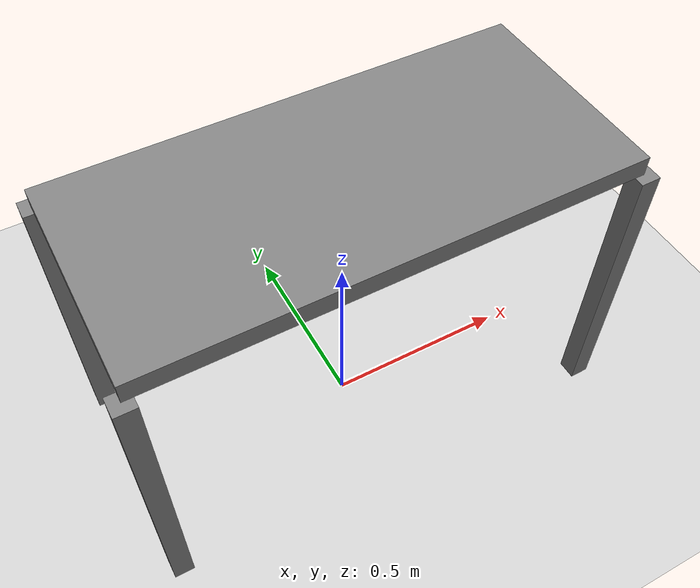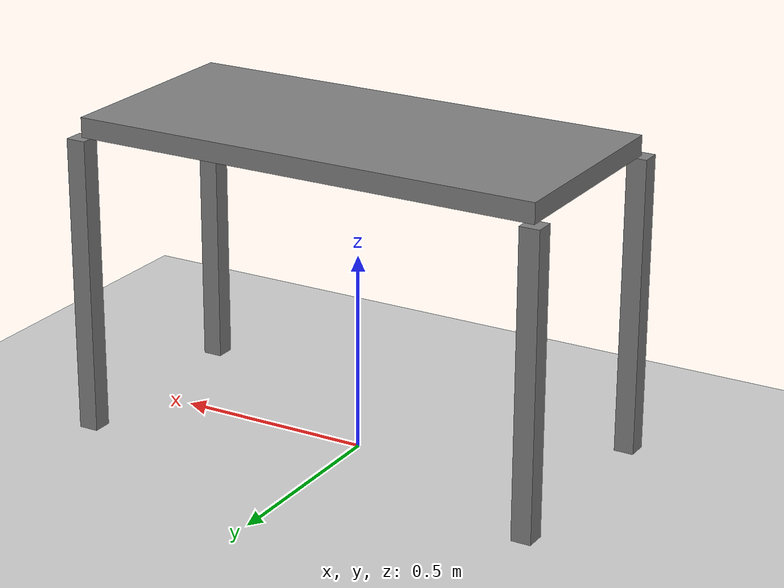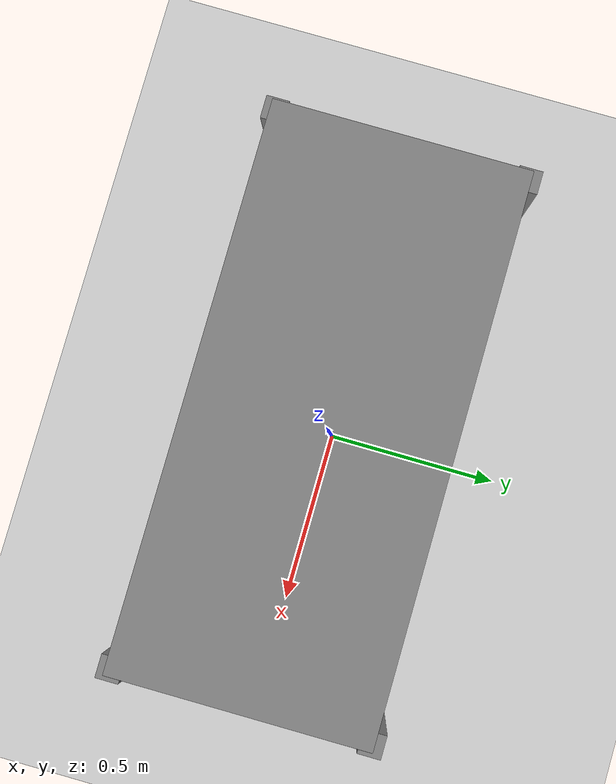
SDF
<?xml version="1.0" ?>
<sdf version="1.8">
  <world name="lerobot_world">
    <physics name="1ms" type="ignored">
      <max_step_size>0.001</max_step_size>
      <real_time_factor>1.0</real_time_factor>
    </physics>
    <plugin
      filename="gz-sim-physics-system"
      name="gz::sim::systems::Physics">
    </plugin>
    <plugin
      filename="gz-sim-user-commands-system"
      name="gz::sim::systems::UserCommands">
    </plugin>
    <plugin
      filename="gz-sim-scene-broadcaster-system"
      name="gz::sim::systems::SceneBroadcaster">
    </plugin>
    <plugin filename="gz-sim-sensors-system" name="gz::sim::systems::Sensors">
      <render_engine>ogre2</render_engine>
    </plugin>

    <light type="directional" name="sun">
      <cast_shadows>true</cast_shadows>
      <pose>0 0 10 0 0 0</pose>
      <diffuse>0.8 0.8 0.8 1</diffuse>
      <specular>0.2 0.2 0.2 1</specular>
      <attenuation>
        <range>1000</range>
        <constant>0.9</constant>
        <linear>0.01</linear>
        <quadratic>0.001</quadratic>
      </attenuation>
      <direction>-0.5 0.1 -0.9</direction>
    </light>

    <model name="ground_plane">
      <static>true</static>
      <link name="link">
        <collision name="collision">
          <geometry>
            <plane>
              <normal>0 0 1</normal>
              <size>100 100</size>
            </plane>
          </geometry>
        </collision>
        <visual name="visual">
          <geometry>
            <plane>
              <normal>0 0 1</normal>
              <size>100 100</size>
            </plane>
          </geometry>
          <material>
            <ambient>0.8 0.8 0.8 1</ambient>
            <diffuse>0.8 0.8 0.8 1</diffuse>
            <specular>0.8 0.8 0.8 1</specular>
          </material>
        </visual>
      </link>
    </model>

    <model name="table">
      <static>true</static>
      <pose>0 0 0.8 0 0 0</pose>
      <link name="link">
        <collision name="collision">
          <geometry>
            <box>
              <size>1.2 0.55 0.05</size>
            </box>
          </geometry>
        </collision>
        <visual name="visual">
          <geometry>
            <box>
              <size>1.2 0.55 0.05</size>
            </box>
          </geometry>
          <material>
            <ambient>0.5 0.5 0.5 1</ambient>
            <diffuse>0.5 0.5 0.5 1</diffuse>
          </material>
        </visual>
      </link>
      <link name="leg1">
        <pose>-0.6 -0.275 -0.4 0 0 0</pose>
        <collision name="collision">
          <geometry>
            <box>
              <size>0.05 0.05 0.75</size>
            </box>
          </geometry>
        </collision>
        <visual name="visual">
          <geometry>
            <box>
              <size>0.05 0.05 0.75</size>
            </box>
          </geometry>
          <material>
            <ambient>0.5 0.5 0.5 1</ambient>
            <diffuse>0.5 0.5 0.5 1</diffuse>
          </material>
        </visual>
      </link>
      <link name="leg2">
        <pose>0.6 -0.275 -0.4 0 0 0</pose>
        <collision name="collision">
          <geometry>
            <box>
              <size>0.05 0.05 0.75</size>
            </box>
          </geometry>
        </collision>
        <visual name="visual">
          <geometry>
            <box>
              <size>0.05 0.05 0.75</size>
            </box>
          </geometry>
          <material>
            <ambient>0.5 0.5 0.5 1</ambient>
            <diffuse>0.5 0.5 0.5 1</diffuse>
          </material>
        </visual>
      </link>
      <link name="leg3">
        <pose>-0.6 0.275 -0.4 0 0 0</pose>
        <collision name="collision">
          <geometry>
            <box>
              <size>0.05 0.05 0.75</size>
            </box>
          </geometry>
        </collision>
        <visual name="visual">
          <geometry>
            <box>
              <size>0.05 0.05 0.75</size>
            </box>
          </geometry>
          <material>
            <ambient>0.5 0.5 0.5 1</ambient>
            <diffuse>0.5 0.5 0.5 1</diffuse>
          </material>
        </visual>
      </link>
      <link name="leg4">
        <pose>0.6 0.275 -0.4 0 0 0</pose>
        <collision name="collision">
          <geometry>
            <box>
              <size>0.05 0.05 0.75</size>
            </box>
          </geometry>
        </collision>
        <visual name="visual">
          <geometry>
            <box>
              <size>0.05 0.05 0.75</size>
            </box>
          </geometry>
          <material>
            <ambient>0.5 0.5 0.5 1</ambient>
            <diffuse>0.5 0.5 0.5 1</diffuse>
          </material>
        </visual>
      </link>
    </model>
  </world>
</sdf>
